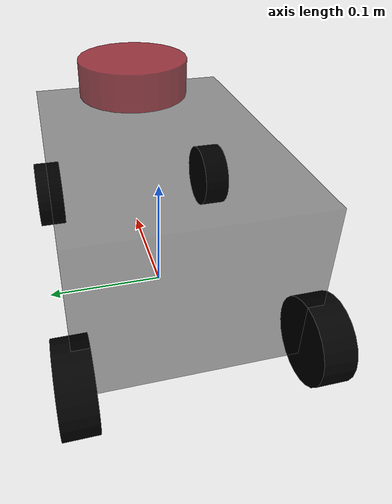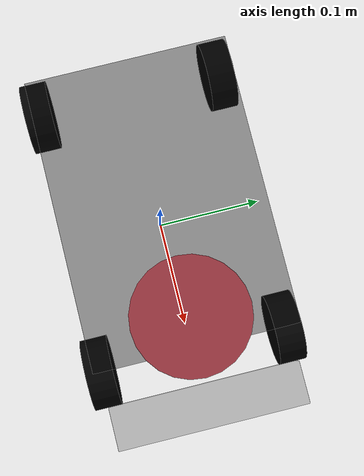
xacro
<?xml version="1.0"?>
<robot
    xmlns:xacro="http://www.ros.org/wiki/xacro"
    name="kilotron">

    <xacro:include filename="$(find gigatron_hardware)/urdf/common.urdf.xacro" />
    <xacro:include filename="$(find gigatron_hardware)/urdf/sensors/zed.urdf.xacro" />
    <xacro:include filename="$(find gigatron_hardware)/urdf/sensors/bno055_imu.urdf.xacro" />
    <xacro:include filename="$(find gigatron_hardware)/urdf/sensors/xvlidar.urdf.xacro" />

    <!-- Dimension Macros -->
    <xacro:property name="car_length" value="0.254" />
    <xacro:property name="wheelbase_width" value="0.1778" />
    <xacro:property name="car_height" value="0.127" />
    <xacro:property name="wheel_radius" value="0.0333" />
    <xacro:property name="wheel_width" value="0.0254" />

    <!-- IMU placement relative to base_link -->
    <xacro:property name="imu_x" value="0" />
    <xacro:property name="imu_y" value="0" />
    <xacro:property name="imu_z" value="0.00637" />

    <!-- LIDAR placement relative to base_link -->
    <xacro:property name="lidar_x" value="0.1016" />
    <xacro:property name="lidar_y" value="0" />
    <xacro:property name="lidar_z" value="0.05715" />
    <xacro:property name="lidar_yaw" value="0" />

    <!-- ZED placement relative to base_link -->
    <xacro:property name="zed_x" value="0.1778" />
    <xacro:property name="zed_y" value="0" />
    <xacro:property name="zed_z" value="0" />
    <xacro:property name="zed_cam_separation" value="0.12065" />

    <!-- base_footprint (ground) to base_link -->
    <link name="base_footprint" />
    <joint name="base_link_footprint_joint" type="fixed" >
        <parent link="base_footprint" />
        <child link="base_link" />
        <origin xyz="0 0 ${car_height/2+0.0508-wheel_radius}" rpy="0 0 0" />
    </joint>

    <!-- Main body -->
    <link name="base_link">
        <inertial>
            <mass value="0.2" />
            <origin xyz="0 0 0" />
            <inertia  ixx="0.2" ixy="0.0"  ixz="0.0"  iyy="0.2"  iyz="0.0"  izz="0.2" />
        </inertial>
        <visual>
            <origin xyz="0 0 0" rpy="0 0 0" />
            <geometry>
                <box size="${car_length} ${wheelbase_width} ${car_height}" />
            </geometry>
            <material name="Grey"/>
        </visual>
        <collision>
            <origin xyz="0 0 0" rpy="0 0 0" />
            <geometry>
                <box size="${car_length} ${wheelbase_width} ${car_height}" />
            </geometry>
        </collision>
    </link>

    <!-- the front left wheel -->
    <joint name="front_left_wheel_joint" type="revolute" >
        <limit lower="-0.76096" upper="0.76096" effort="100" velocity="10" />
        <axis xyz="0 0 1" />
        <parent link="base_link" />
        <child link="front_left_wheel_link" />
        <origin xyz="0.127 0.089 -0.0508" rpy="0 0 0" />
    </joint>
    <link name="front_left_wheel_link">
        <inertial>
            <mass value="0.01" />
            <origin xyz="0 0 0" />
            <inertia  ixx="0.01" ixy="0.0"  ixz="0.0"  iyy="0.01"  iyz="0.0"  izz="0.01" />
        </inertial>
        <visual>
            <origin xyz="0 0 0" rpy="${M_PI/2} 0 0" />
            <geometry>
                <cylinder radius="${wheel_radius}" length="${wheel_width}" />
            </geometry>
            <material name="Black"/>
        </visual>
        <collision>
            <origin xyz="0 0 0" rpy="${M_PI/2} 0 0" />
            <geometry>
                <cylinder radius="${wheel_radius}" length="${wheel_width}" />
            </geometry>
        </collision>
    </link>

    <!-- the front right wheel -->
    <joint name="front_right_wheel_joint" type="revolute" >
        <limit lower="-0.76096" upper="0.76096" effort="100" velocity="10" />
        <axis xyz="0 0 1" />
        <parent link="base_link" />
        <child link="front_right_wheel_link" />
        <origin xyz="0.127 -0.089 -0.0508" rpy="0 0 0" />
    </joint>
    <link name="front_right_wheel_link">
        <inertial>
            <mass value="0.01" />
            <origin xyz="0 0 0" />
            <inertia  ixx="0.01" ixy="0.0"  ixz="0.0"  iyy="0.01"  iyz="0.0"  izz="0.01" />
        </inertial>
        <visual>
            <origin xyz="0 0 0" rpy="${M_PI/2} 0 0" />
            <geometry>
                <cylinder radius="${wheel_radius}" length="${wheel_width}" />
            </geometry>
            <material name="Black"/>
        </visual>
        <collision>
            <origin xyz="0 0 0" rpy="${M_PI/2} 0 0" />
            <geometry>
                <cylinder radius="${wheel_radius}" length="${wheel_width}" />
            </geometry>
        </collision>
    </link>

    <!-- the back left wheel -->
    <joint name="back_left_wheel_joint" type="fixed" >
        <parent link="base_link" />
        <child link="back_left_wheel_link" />
        <origin xyz="-0.127 0.089 -0.0508" rpy="0 0 0" />
    </joint>
    <link name="back_left_wheel_link">
        <inertial>
            <mass value="0.01" />
            <origin xyz="0 0 0" />
            <inertia  ixx="0.01" ixy="0.0"  ixz="0.0"  iyy="0.01"  iyz="0.0"  izz="0.01" />
        </inertial>
        <visual>
            <origin xyz="0 0 0" rpy="${M_PI/2} 0 0" />
            <geometry>
                <cylinder radius="${wheel_radius}" length="${wheel_width}" />
            </geometry>
            <material name="Black"/>
        </visual>
        <collision>
            <origin xyz="0 0 0" rpy="${M_PI/2} 0 0" />
            <geometry>
                <cylinder radius="${wheel_radius}" length="${wheel_width}" />
            </geometry>
        </collision>
    </link>

    <!-- the back right wheel -->
    <joint name="back_right_wheel_joint" type="fixed" >
        <parent link="base_link" />
        <child link="back_right_wheel_link" />
        <origin xyz="-0.127 -0.089 -0.0508" rpy="0 0 0" />
    </joint>
    <link name="back_right_wheel_link">
        <inertial>
            <mass value="0.01" />
            <origin xyz="0 0 0" />
            <inertia  ixx="0.01" ixy="0.0"  ixz="0.0"  iyy="0.01"  iyz="0.0"  izz="0.01" />
        </inertial>
        <visual>
            <origin xyz="0 0 0" rpy="${M_PI/2} 0 0" />
            <geometry>
                <cylinder radius="${wheel_radius}" length="${wheel_width}" />
            </geometry>
            <material name="Black"/>
        </visual>
        <collision>
            <origin xyz="0 0 0" rpy="${M_PI/2} 0 0" />
            <geometry>
                <cylinder radius="${wheel_radius}" length="${wheel_width}" />
            </geometry>
        </collision>
    </link>

    <!-- RPLIDAR -->
    <xacro:xvlidar_v0
        name="xvlidar"
        parent="base_link">
        <origin
            xyz="${lidar_x} ${lidar_y} ${lidar_z}"
            rpy="0 0 ${lidar_yaw}" />
    </xacro:xvlidar_v0>

    <!-- IMU -->
    <xacro:bno055_imu_v0
        name="imu"
        parent="base_link">
        <origin
            xyz="${imu_x} ${imu_y} ${imu_z}"
            rpy="0 0 0" />
    </xacro:bno055_imu_v0>

    <!-- ZED -->
    <xacro:zed_v0
        name="zed"
        parent="base_link">
        <origin
            xyz="${zed_x} ${zed_y} ${zed_z}"
            rpy="0 0 0" />
    </xacro:zed_v0>

</robot>

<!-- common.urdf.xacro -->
<robot
	xmlns:xacro="http://ros.org/wiki/xacro">

    <!-- Physical Constant Macros -->
    <xacro:property name="M_PI" value="3.1415926535897931" />

    <!-- Physical Material Macros -->
    <material name="Grey">
        <color rgba="0 0 0 0.4"/>
    </material>
    <material name="Blue">
        <color rgba="0 0.3 0.9 0.3"/>
    </material>
    <material name="Black">
        <color rgba="0 0 0 0.9"/>
    </material>
    <material name="DarkGrey">
        <color rgba="0.5 0 0.05 0.75"/>
    </material>

</robot>

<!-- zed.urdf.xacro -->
<robot xmlns:xacro="http://ros.org/wiki/xacro">

  <property name="zed_cam_separation" value="0.12065" />

  <!-- Stereolabs ZED sensor macro -->
  <xacro:macro name="zed_v0" params="name parent *origin">

    <!-- ZED -->
    <joint name="zed_joint" type="fixed">
       <insert_block name="origin" />
      <parent link="${parent}"/>
        <child link="zed_link"/>
    </joint>
    <link name="zed_link" type="fixed">
        <inertial>
            <mass value="0.2" />
            <origin xyz="0 0 0" />
            <inertia  ixx="0.2" ixy="0.0"  ixz="0.0"  iyy="0.2"  iyz="0.0"  izz="0.2" />
        </inertial>
        <visual>
            <origin xyz="0 0 0" rpy="0 0 0" />
            <geometry>
                <box size="0.0381 0.1717 0.0317" /> <!-- ZED dimensions -->
            </geometry>
            <material name="ZEDGrey">
              <color rgba="0.5 0.5 0.5 0.5"/>
            </material>
          </visual>
        <collision>
            <origin xyz="0 0 0" rpy="0 0 0" />
            <geometry>
                <box size="0.0381 0.1717 0.0317" />
            </geometry>
        </collision>
    </link>

    <!-- optical rotation -->
    <joint name="zed_optical_joint" type="fixed">
        <origin xyz="${0.0381/2} 0 0" rpy="${-M_PI/2} 0 ${-M_PI/2}" />
        <parent link="zed_link"/>
        <child link="zed_optical_frame"/>
    </joint>
    <link name="zed_optical_frame" />

    <!-- left camera -->
    <joint name="zed_left_camera_joint" type="fixed">
        <origin xyz="${0.0381/2} ${zed_cam_separation/2} 0" rpy="0 0 0" />
        <parent link="zed_link"/>
        <child link="left_camera_link"/>
    </joint>
    <link name="left_camera_link" />

    <joint name="left_optical_joint" type="fixed">
        <origin xyz="0 0 0" rpy="${-M_PI/2} 0 ${-M_PI/2}" />
        <parent link="left_camera_link"/>
        <child link="left_optical_frame"/>
    </joint>
    <link name="left_optical_frame" type="fixed" />

    <!-- right camera -->
    <joint name="zed_right_camera_joint" type="fixed">
        <origin xyz="${0.0381/2} -${zed_cam_separation/2} 0" rpy="0 0 0" />
        <parent link="zed_link"/>
        <child link="right_camera_link"/>
    </joint>
    <link name="right_camera_link" />

    <joint name="right_optical_joint" type="fixed">
        <origin xyz="0 0 0" rpy="${-M_PI/2} 0 ${-M_PI/2}" />
        <parent link="right_camera_link"/>
        <child link="right_optical_frame"/>
    </joint>
    <link name="right_optical_frame" />

  </xacro:macro>

</robot>

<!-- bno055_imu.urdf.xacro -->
<robot xmlns:xacro="http://ros.org/wiki/xacro">

  <!-- BNO055 IMU sensor macro -->
  <xacro:macro name="bno055_imu_v0" params="name parent *origin">

    <!-- ZED -->
    <joint name="${name}_joint" type="fixed">
        <insert_block name="origin" />
        <parent link="${parent}"/>
        <child link="${name}_link"/>
    </joint>
    <link name="${name}_link" type="fixed">
                <inertial>
            <mass value="0.01" />
            <origin xyz="0 0 0" />
            <inertia  ixx="0.2" ixy="0.0"  ixz="0.0"  iyy="0.2"  iyz="0.0"  izz="0.2" />
        </inertial>
        <visual>
            <origin xyz="0 0 0" rpy="0 0 0" />
            <geometry>
                <box size="0.02 0.027 0.004" /> <!-- IMU dimensions -->
            </geometry>
            <material name="Blue"/>
        </visual>
        <collision>
            <origin xyz="0 0 0" rpy="0 0 0" />
            <geometry>
                <box size="0.02 0.027 0.004" />
            </geometry>
        </collision>
    </link>

  </xacro:macro>

</robot>

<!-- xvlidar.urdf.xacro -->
<robot xmlns:xacro="http://ros.org/wiki/xacro">

  <!-- NEATO XV LIDAR sensor macro -->
  <xacro:macro name="xvlidar_v0" params="name parent *origin">

    <!-- ZED -->
    <joint name="${name}_joint" type="fixed">
        <insert_block name="origin" />
        <parent link="${parent}"/>
        <child link="${name}_link"/>
    </joint>
    <link name="${name}_link" type="fixed">
        <inertial>
            <mass value="0.1"/>
            <origin xyz="0 0 0"/>
            <inertia ixx="0.1" ixy="0" ixz="0" iyy="0.1" iyz="0" izz="0.1"/>
        </inertial>
        <visual>
            <origin rpy="0 0 0" xyz="0 0 0.02"/>
            <geometry>
                <cylinder radius="0.05" length="0.04"/>
            </geometry>
            <material name="DarkGrey"/>
        </visual>
        <collision>
            <origin rpy="0 0 0" xyz="0 0 0.025"/>
            <geometry>
                <box size="0.05 0.05 0.04"/>
            </geometry>
        </collision>
    </link>

  </xacro:macro>

</robot>
